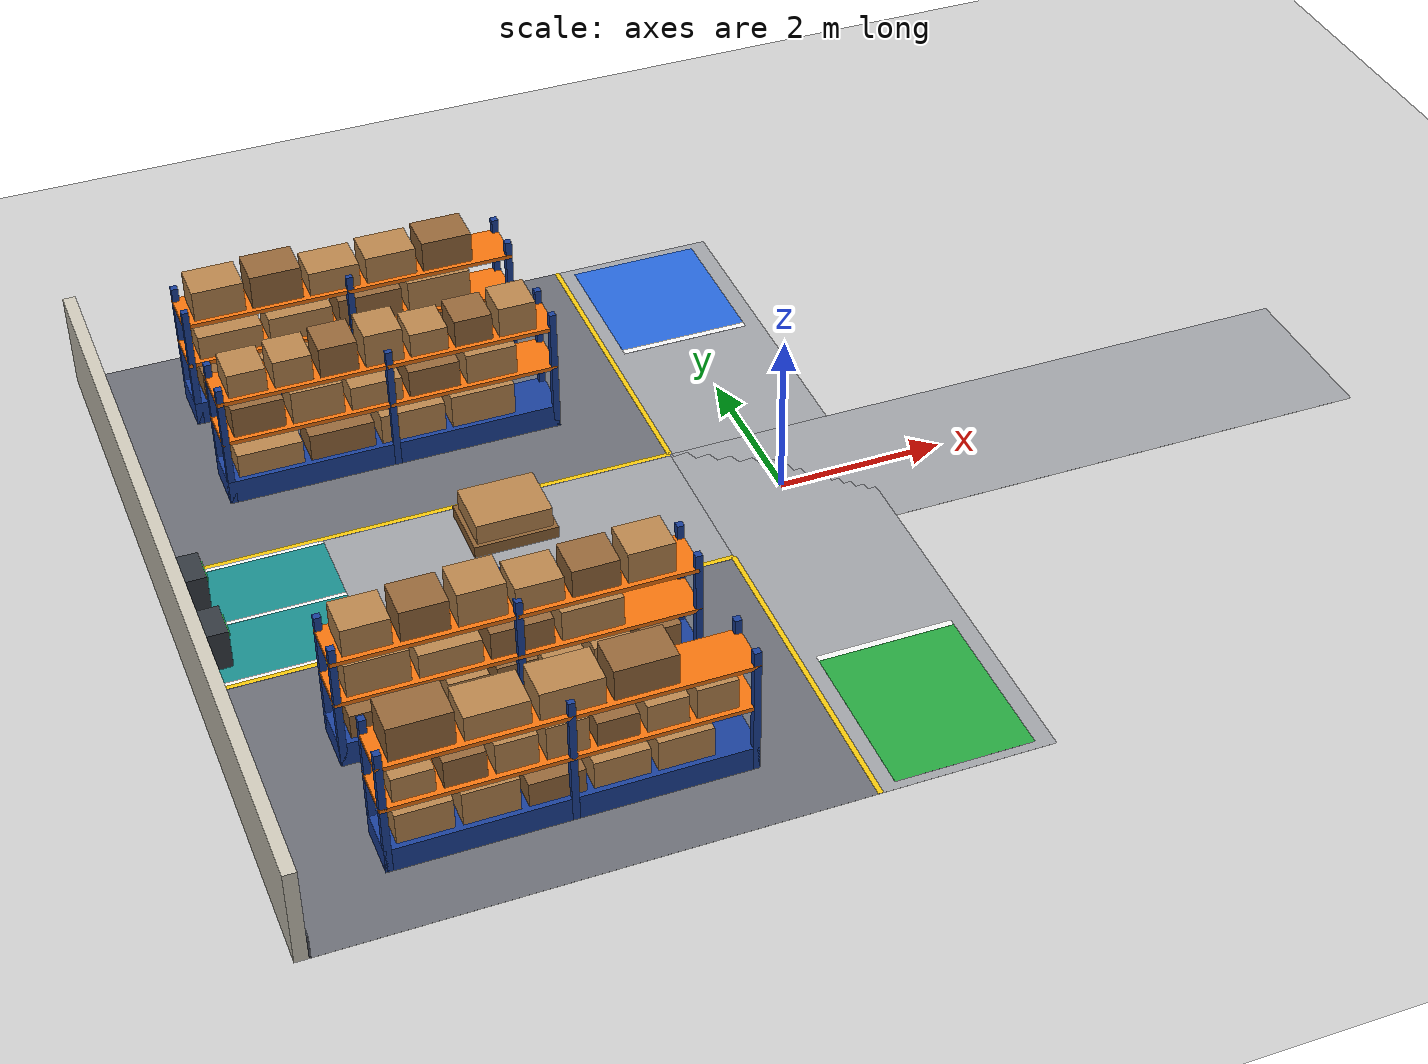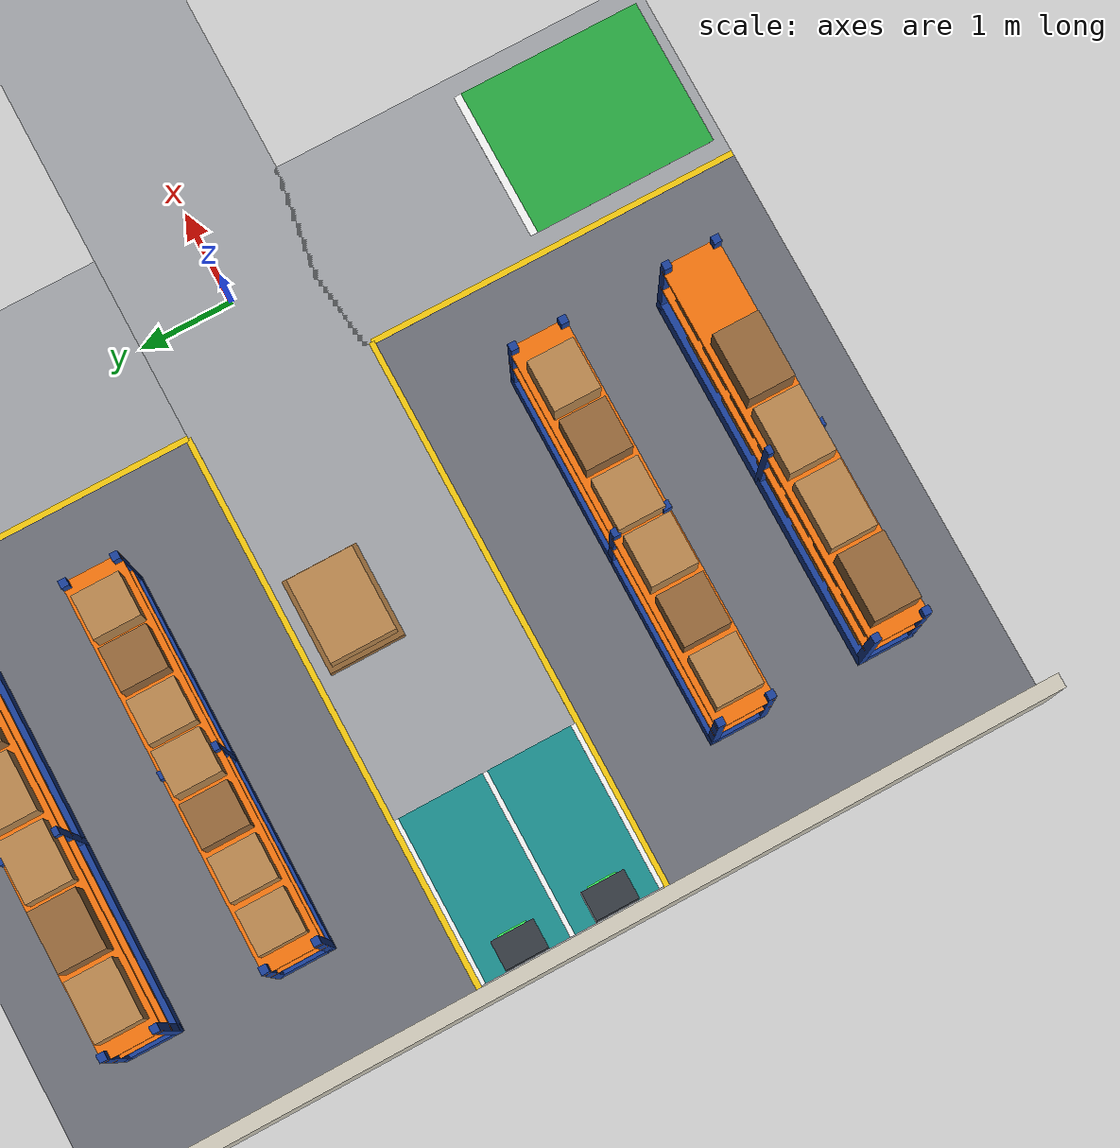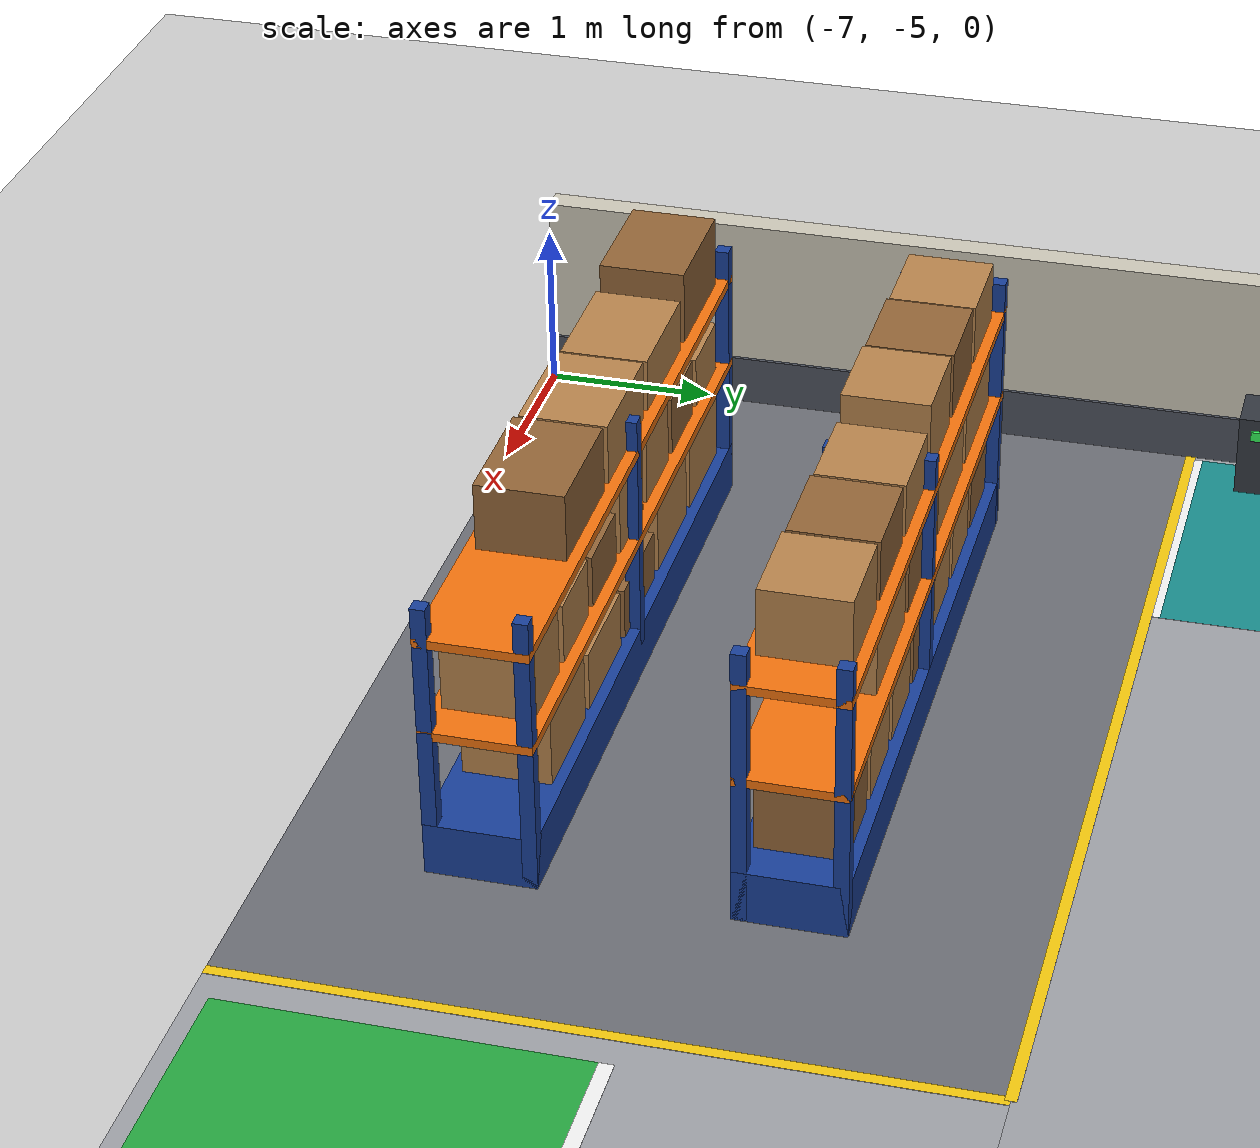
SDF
<sdf version="1.6">
 <world name="default">
  <include><uri>model://ground_plane</uri></include>
  <include><uri>model://sun</uri></include>
  <model name="amr_warehouse">
   <static>true</static>
   <link name="floor_main_ns">
    <pose>0.000 0.000 0.001 0 0 0</pose>
    <visual name="v">
     <geometry><box><size>2.000 10.000 0.002</size></box></geometry>
     <material>
      <ambient>0.62 0.63 0.65 1</ambient>
      <diffuse>0.62 0.63 0.65 1</diffuse>
      <specular>0.1 0.1 0.1 1</specular>
     </material>
    </visual>
   </link>
   <link name="floor_cross_ew">
    <pose>0.000 0.000 0.001 0 0 0</pose>
    <visual name="v">
     <geometry><box><size>14.000 2.000 0.002</size></box></geometry>
     <material>
      <ambient>0.62 0.63 0.65 1</ambient>
      <diffuse>0.62 0.63 0.65 1</diffuse>
      <specular>0.1 0.1 0.1 1</specular>
     </material>
    </visual>
   </link>
   <link name="floor_storage_-1_-1">
    <pose>-4.000 -3.000 0.001 0 0 0</pose>
    <visual name="v">
     <geometry><box><size>6.000 4.000 0.002</size></box></geometry>
     <material>
      <ambient>0.42 0.43 0.46 1</ambient>
      <diffuse>0.42 0.43 0.46 1</diffuse>
      <specular>0.1 0.1 0.1 1</specular>
     </material>
    </visual>
   </link>
   <link name="floor_storage_-1_1">
    <pose>-4.000 3.000 0.001 0 0 0</pose>
    <visual name="v">
     <geometry><box><size>6.000 4.000 0.002</size></box></geometry>
     <material>
      <ambient>0.42 0.43 0.46 1</ambient>
      <diffuse>0.42 0.43 0.46 1</diffuse>
      <specular>0.1 0.1 0.1 1</specular>
     </material>
    </visual>
   </link>
   <link name="zone_start">
    <pose>0.000 -3.900 0.002 0 0 0</pose>
    <visual name="v">
     <geometry><box><size>1.600 2.000 0.002</size></box></geometry>
     <material>
      <ambient>0.15 0.65 0.25 1</ambient>
      <diffuse>0.15 0.65 0.25 1</diffuse>
      <specular>0.1 0.1 0.1 1</specular>
     </material>
    </visual>
   </link>
   <link name="zone_delivery">
    <pose>0.000 4.000 0.002 0 0 0</pose>
    <visual name="v">
     <geometry><box><size>1.600 1.800 0.002</size></box></geometry>
     <material>
      <ambient>0.15 0.4 0.85 1</ambient>
      <diffuse>0.15 0.4 0.85 1</diffuse>
      <specular>0.1 0.1 0.1 1</specular>
     </material>
    </visual>
   </link>
   <link name="zone_charge">
    <pose>-6.075 0.000 0.002 0 0 0</pose>
    <visual name="v">
     <geometry><box><size>1.750 1.900 0.002</size></box></geometry>
     <material>
      <ambient>0.1 0.55 0.55 1</ambient>
      <diffuse>0.1 0.55 0.55 1</diffuse>
      <specular>0.1 0.1 0.1 1</specular>
     </material>
    </visual>
   </link>
   <link name="mark_ns_s_-1">
    <pose>-1.000 -3.000 0.003 0 0 0</pose>
    <visual name="v">
     <geometry><box><size>0.060 4.000 0.002</size></box></geometry>
     <material>
      <ambient>0.95 0.78 0.05 1</ambient>
      <diffuse>0.95 0.78 0.05 1</diffuse>
      <specular>0.1 0.1 0.1 1</specular>
     </material>
    </visual>
   </link>
   <link name="mark_ns_n_-1">
    <pose>-1.000 3.000 0.003 0 0 0</pose>
    <visual name="v">
     <geometry><box><size>0.060 4.000 0.002</size></box></geometry>
     <material>
      <ambient>0.95 0.78 0.05 1</ambient>
      <diffuse>0.95 0.78 0.05 1</diffuse>
      <specular>0.1 0.1 0.1 1</specular>
     </material>
    </visual>
   </link>
   <link name="mark_ew_w_-1">
    <pose>-4.000 -1.000 0.003 0 0 0</pose>
    <visual name="v">
     <geometry><box><size>6.000 0.060 0.002</size></box></geometry>
     <material>
      <ambient>0.95 0.78 0.05 1</ambient>
      <diffuse>0.95 0.78 0.05 1</diffuse>
      <specular>0.1 0.1 0.1 1</specular>
     </material>
    </visual>
   </link>
   <link name="mark_ew_w_1">
    <pose>-4.000 1.000 0.003 0 0 0</pose>
    <visual name="v">
     <geometry><box><size>6.000 0.060 0.002</size></box></geometry>
     <material>
      <ambient>0.95 0.78 0.05 1</ambient>
      <diffuse>0.95 0.78 0.05 1</diffuse>
      <specular>0.1 0.1 0.1 1</specular>
     </material>
    </visual>
   </link>
   <link name="mark_bay_0">
    <pose>-6.075 -0.950 0.003 0 0 0</pose>
    <visual name="v">
     <geometry><box><size>1.750 0.050 0.002</size></box></geometry>
     <material>
      <ambient>0.95 0.95 0.95 1</ambient>
      <diffuse>0.95 0.95 0.95 1</diffuse>
      <specular>0.1 0.1 0.1 1</specular>
     </material>
    </visual>
   </link>
   <link name="mark_bay_1">
    <pose>-6.075 0.000 0.003 0 0 0</pose>
    <visual name="v">
     <geometry><box><size>1.750 0.050 0.002</size></box></geometry>
     <material>
      <ambient>0.95 0.95 0.95 1</ambient>
      <diffuse>0.95 0.95 0.95 1</diffuse>
      <specular>0.1 0.1 0.1 1</specular>
     </material>
    </visual>
   </link>
   <link name="mark_bay_2">
    <pose>-6.075 0.950 0.003 0 0 0</pose>
    <visual name="v">
     <geometry><box><size>1.750 0.050 0.002</size></box></geometry>
     <material>
      <ambient>0.95 0.95 0.95 1</ambient>
      <diffuse>0.95 0.95 0.95 1</diffuse>
      <specular>0.1 0.1 0.1 1</specular>
     </material>
    </visual>
   </link>
   <link name="mark_stop_s">
    <pose>0.000 -2.900 0.003 0 0 0</pose>
    <visual name="v">
     <geometry><box><size>1.600 0.080 0.002</size></box></geometry>
     <material>
      <ambient>0.95 0.95 0.95 1</ambient>
      <diffuse>0.95 0.95 0.95 1</diffuse>
      <specular>0.1 0.1 0.1 1</specular>
     </material>
    </visual>
   </link>
   <link name="mark_stop_n">
    <pose>0.000 3.100 0.003 0 0 0</pose>
    <visual name="v">
     <geometry><box><size>1.600 0.080 0.002</size></box></geometry>
     <material>
      <ambient>0.95 0.95 0.95 1</ambient>
      <diffuse>0.95 0.95 0.95 1</diffuse>
      <specular>0.1 0.1 0.1 1</specular>
     </material>
    </visual>
   </link>
   <link name="wall_w">
    <pose>-7.075 0.000 0.600 0 0 0</pose>
    <collision name="c"><geometry><box><size>0.150 10.000 1.200</size></box></geometry></collision>
    <visual name="v">
     <geometry><box><size>0.150 10.000 1.200</size></box></geometry>
     <material>
      <ambient>0.8 0.78 0.72 1</ambient>
      <diffuse>0.8 0.78 0.72 1</diffuse>
      <specular>0.1 0.1 0.1 1</specular>
     </material>
    </visual>
   </link>
   <link name="wall_stripe3">
    <pose>-6.990 0.000 0.150 0 0 0</pose>
    <visual name="v">
     <geometry><box><size>0.020 10.000 0.300</size></box></geometry>
     <material>
      <ambient>0.3 0.32 0.36 1</ambient>
      <diffuse>0.3 0.32 0.36 1</diffuse>
      <specular>0.1 0.1 0.1 1</specular>
     </material>
    </visual>
   </link>
   <link name="rack_ES0_base">
    <pose>-4.000 -2.300 0.150 0 0 0</pose>
    <collision name="c"><geometry><box><size>4.000 0.600 0.300</size></box></geometry></collision>
    <visual name="v">
     <geometry><box><size>4.000 0.600 0.300</size></box></geometry>
     <material>
      <ambient>0.1 0.25 0.6 1</ambient>
      <diffuse>0.1 0.25 0.6 1</diffuse>
      <specular>0.1 0.1 0.1 1</specular>
     </material>
    </visual>
   </link>
   <link name="rack_ES0_post00">
    <pose>-5.960 -2.560 0.800 0 0 0</pose>
    <collision name="c"><geometry><box><size>0.080 0.080 1.600</size></box></geometry></collision>
    <visual name="v">
     <geometry><box><size>0.080 0.080 1.600</size></box></geometry>
     <material>
      <ambient>0.1 0.25 0.6 1</ambient>
      <diffuse>0.1 0.25 0.6 1</diffuse>
      <specular>0.1 0.1 0.1 1</specular>
     </material>
    </visual>
   </link>
   <link name="rack_ES0_post01">
    <pose>-5.960 -2.040 0.800 0 0 0</pose>
    <collision name="c"><geometry><box><size>0.080 0.080 1.600</size></box></geometry></collision>
    <visual name="v">
     <geometry><box><size>0.080 0.080 1.600</size></box></geometry>
     <material>
      <ambient>0.1 0.25 0.6 1</ambient>
      <diffuse>0.1 0.25 0.6 1</diffuse>
      <specular>0.1 0.1 0.1 1</specular>
     </material>
    </visual>
   </link>
   <link name="rack_ES0_post10">
    <pose>-4.000 -2.560 0.800 0 0 0</pose>
    <collision name="c"><geometry><box><size>0.080 0.080 1.600</size></box></geometry></collision>
    <visual name="v">
     <geometry><box><size>0.080 0.080 1.600</size></box></geometry>
     <material>
      <ambient>0.1 0.25 0.6 1</ambient>
      <diffuse>0.1 0.25 0.6 1</diffuse>
      <specular>0.1 0.1 0.1 1</specular>
     </material>
    </visual>
   </link>
   <link name="rack_ES0_post11">
    <pose>-4.000 -2.040 0.800 0 0 0</pose>
    <collision name="c"><geometry><box><size>0.080 0.080 1.600</size></box></geometry></collision>
    <visual name="v">
     <geometry><box><size>0.080 0.080 1.600</size></box></geometry>
     <material>
      <ambient>0.1 0.25 0.6 1</ambient>
      <diffuse>0.1 0.25 0.6 1</diffuse>
      <specular>0.1 0.1 0.1 1</specular>
     </material>
    </visual>
   </link>
   <link name="rack_ES0_post20">
    <pose>-2.040 -2.560 0.800 0 0 0</pose>
    <collision name="c"><geometry><box><size>0.080 0.080 1.600</size></box></geometry></collision>
    <visual name="v">
     <geometry><box><size>0.080 0.080 1.600</size></box></geometry>
     <material>
      <ambient>0.1 0.25 0.6 1</ambient>
      <diffuse>0.1 0.25 0.6 1</diffuse>
      <specular>0.1 0.1 0.1 1</specular>
     </material>
    </visual>
   </link>
   <link name="rack_ES0_post21">
    <pose>-2.040 -2.040 0.800 0 0 0</pose>
    <collision name="c"><geometry><box><size>0.080 0.080 1.600</size></box></geometry></collision>
    <visual name="v">
     <geometry><box><size>0.080 0.080 1.600</size></box></geometry>
     <material>
      <ambient>0.1 0.25 0.6 1</ambient>
      <diffuse>0.1 0.25 0.6 1</diffuse>
      <specular>0.1 0.1 0.1 1</specular>
     </material>
    </visual>
   </link>
   <link name="rack_ES0_beam0">
    <pose>-4.000 -2.300 0.850 0 0 0</pose>
    <collision name="c"><geometry><box><size>4.000 0.600 0.050</size></box></geometry></collision>
    <visual name="v">
     <geometry><box><size>4.000 0.600 0.050</size></box></geometry>
     <material>
      <ambient>0.95 0.45 0.05 1</ambient>
      <diffuse>0.95 0.45 0.05 1</diffuse>
      <specular>0.1 0.1 0.1 1</specular>
     </material>
    </visual>
   </link>
   <link name="rack_ES0_beam1">
    <pose>-4.000 -2.300 1.400 0 0 0</pose>
    <collision name="c"><geometry><box><size>4.000 0.600 0.050</size></box></geometry></collision>
    <visual name="v">
     <geometry><box><size>4.000 0.600 0.050</size></box></geometry>
     <material>
      <ambient>0.95 0.45 0.05 1</ambient>
      <diffuse>0.95 0.45 0.05 1</diffuse>
      <specular>0.1 0.1 0.1 1</specular>
     </material>
    </visual>
   </link>
   <link name="rack_ES0_carton0_0">
    <pose>-5.625 -2.300 0.450 0 0 0</pose>
    <visual name="v">
     <geometry><box><size>0.450 0.480 0.300</size></box></geometry>
     <material>
      <ambient>0.58 0.4 0.22 1</ambient>
      <diffuse>0.58 0.4 0.22 1</diffuse>
      <specular>0.1 0.1 0.1 1</specular>
     </material>
    </visual>
   </link>
   <link name="rack_ES0_carton0_1">
    <pose>-5.095 -2.300 0.470 0 0 0</pose>
    <visual name="v">
     <geometry><box><size>0.450 0.480 0.340</size></box></geometry>
     <material>
      <ambient>0.72 0.52 0.3 1</ambient>
      <diffuse>0.72 0.52 0.3 1</diffuse>
      <specular>0.1 0.1 0.1 1</specular>
     </material>
    </visual>
   </link>
   <link name="rack_ES0_carton0_2">
    <pose>-4.565 -2.300 0.490 0 0 0</pose>
    <visual name="v">
     <geometry><box><size>0.450 0.480 0.380</size></box></geometry>
     <material>
      <ambient>0.72 0.52 0.3 1</ambient>
      <diffuse>0.72 0.52 0.3 1</diffuse>
      <specular>0.1 0.1 0.1 1</specular>
     </material>
    </visual>
   </link>
   <link name="rack_ES0_carton0_3">
    <pose>-4.035 -2.300 0.510 0 0 0</pose>
    <visual name="v">
     <geometry><box><size>0.450 0.480 0.420</size></box></geometry>
     <material>
      <ambient>0.58 0.4 0.22 1</ambient>
      <diffuse>0.58 0.4 0.22 1</diffuse>
      <specular>0.1 0.1 0.1 1</specular>
     </material>
    </visual>
   </link>
   <link name="rack_ES0_carton0_4">
    <pose>-3.505 -2.300 0.450 0 0 0</pose>
    <visual name="v">
     <geometry><box><size>0.450 0.480 0.300</size></box></geometry>
     <material>
      <ambient>0.72 0.52 0.3 1</ambient>
      <diffuse>0.72 0.52 0.3 1</diffuse>
      <specular>0.1 0.1 0.1 1</specular>
     </material>
    </visual>
   </link>
   <link name="rack_ES0_carton0_5">
    <pose>-2.975 -2.300 0.470 0 0 0</pose>
    <visual name="v">
     <geometry><box><size>0.450 0.480 0.340</size></box></geometry>
     <material>
      <ambient>0.72 0.52 0.3 1</ambient>
      <diffuse>0.72 0.52 0.3 1</diffuse>
      <specular>0.1 0.1 0.1 1</specular>
     </material>
    </visual>
   </link>
   <link name="rack_ES0_carton0_6">
    <pose>-2.445 -2.300 0.490 0 0 0</pose>
    <visual name="v">
     <geometry><box><size>0.450 0.480 0.380</size></box></geometry>
     <material>
      <ambient>0.58 0.4 0.22 1</ambient>
      <diffuse>0.58 0.4 0.22 1</diffuse>
      <specular>0.1 0.1 0.1 1</specular>
     </material>
    </visual>
   </link>
   <link name="rack_ES0_carton1_0">
    <pose>-5.505 -2.300 1.085 0 0 0</pose>
    <visual name="v">
     <geometry><box><size>0.690 0.480 0.420</size></box></geometry>
     <material>
      <ambient>0.72 0.52 0.3 1</ambient>
      <diffuse>0.72 0.52 0.3 1</diffuse>
      <specular>0.1 0.1 0.1 1</specular>
     </material>
    </visual>
   </link>
   <link name="rack_ES0_carton1_1">
    <pose>-4.735 -2.300 1.025 0 0 0</pose>
    <visual name="v">
     <geometry><box><size>0.690 0.480 0.300</size></box></geometry>
     <material>
      <ambient>0.72 0.52 0.3 1</ambient>
      <diffuse>0.72 0.52 0.3 1</diffuse>
      <specular>0.1 0.1 0.1 1</specular>
     </material>
    </visual>
   </link>
   <link name="rack_ES0_carton1_2">
    <pose>-3.965 -2.300 1.045 0 0 0</pose>
    <visual name="v">
     <geometry><box><size>0.690 0.480 0.340</size></box></geometry>
     <material>
      <ambient>0.58 0.4 0.22 1</ambient>
      <diffuse>0.58 0.4 0.22 1</diffuse>
      <specular>0.1 0.1 0.1 1</specular>
     </material>
    </visual>
   </link>
   <link name="rack_ES0_carton1_3">
    <pose>-3.195 -2.300 1.065 0 0 0</pose>
    <visual name="v">
     <geometry><box><size>0.690 0.480 0.380</size></box></geometry>
     <material>
      <ambient>0.72 0.52 0.3 1</ambient>
      <diffuse>0.72 0.52 0.3 1</diffuse>
      <specular>0.1 0.1 0.1 1</specular>
     </material>
    </visual>
   </link>
   <link name="rack_ES0_carton2_0">
    <pose>-5.585 -2.300 1.595 0 0 0</pose>
    <visual name="v">
     <geometry><box><size>0.530 0.480 0.340</size></box></geometry>
     <material>
      <ambient>0.72 0.52 0.3 1</ambient>
      <diffuse>0.72 0.52 0.3 1</diffuse>
      <specular>0.1 0.1 0.1 1</specular>
     </material>
    </visual>
   </link>
   <link name="rack_ES0_carton2_1">
    <pose>-4.975 -2.300 1.615 0 0 0</pose>
    <visual name="v">
     <geometry><box><size>0.530 0.480 0.380</size></box></geometry>
     <material>
      <ambient>0.58 0.4 0.22 1</ambient>
      <diffuse>0.58 0.4 0.22 1</diffuse>
      <specular>0.1 0.1 0.1 1</specular>
     </material>
    </visual>
   </link>
   <link name="rack_ES0_carton2_2">
    <pose>-4.365 -2.300 1.635 0 0 0</pose>
    <visual name="v">
     <geometry><box><size>0.530 0.480 0.420</size></box></geometry>
     <material>
      <ambient>0.72 0.52 0.3 1</ambient>
      <diffuse>0.72 0.52 0.3 1</diffuse>
      <specular>0.1 0.1 0.1 1</specular>
     </material>
    </visual>
   </link>
   <link name="rack_ES0_carton2_3">
    <pose>-3.755 -2.300 1.575 0 0 0</pose>
    <visual name="v">
     <geometry><box><size>0.530 0.480 0.300</size></box></geometry>
     <material>
      <ambient>0.72 0.52 0.3 1</ambient>
      <diffuse>0.72 0.52 0.3 1</diffuse>
      <specular>0.1 0.1 0.1 1</specular>
     </material>
    </visual>
   </link>
   <link name="rack_ES0_carton2_4">
    <pose>-3.145 -2.300 1.595 0 0 0</pose>
    <visual name="v">
     <geometry><box><size>0.530 0.480 0.340</size></box></geometry>
     <material>
      <ambient>0.58 0.4 0.22 1</ambient>
      <diffuse>0.58 0.4 0.22 1</diffuse>
      <specular>0.1 0.1 0.1 1</specular>
     </material>
    </visual>
   </link>
   <link name="rack_ES0_carton2_5">
    <pose>-2.535 -2.300 1.615 0 0 0</pose>
    <visual name="v">
     <geometry><box><size>0.530 0.480 0.380</size></box></geometry>
     <material>
      <ambient>0.72 0.52 0.3 1</ambient>
      <diffuse>0.72 0.52 0.3 1</diffuse>
      <specular>0.1 0.1 0.1 1</specular>
     </material>
    </visual>
   </link>
   <link name="rack_ES1_base">
    <pose>-4.000 -3.900 0.150 0 0 0</pose>
    <collision name="c"><geometry><box><size>4.000 0.600 0.300</size></box></geometry></collision>
    <visual name="v">
     <geometry><box><size>4.000 0.600 0.300</size></box></geometry>
     <material>
      <ambient>0.1 0.25 0.6 1</ambient>
      <diffuse>0.1 0.25 0.6 1</diffuse>
      <specular>0.1 0.1 0.1 1</specular>
     </material>
    </visual>
   </link>
   <link name="rack_ES1_post00">
    <pose>-5.960 -4.160 0.800 0 0 0</pose>
    <collision name="c"><geometry><box><size>0.080 0.080 1.600</size></box></geometry></collision>
    <visual name="v">
     <geometry><box><size>0.080 0.080 1.600</size></box></geometry>
     <material>
      <ambient>0.1 0.25 0.6 1</ambient>
      <diffuse>0.1 0.25 0.6 1</diffuse>
      <specular>0.1 0.1 0.1 1</specular>
     </material>
    </visual>
   </link>
   <link name="rack_ES1_post01">
    <pose>-5.960 -3.640 0.800 0 0 0</pose>
    <collision name="c"><geometry><box><size>0.080 0.080 1.600</size></box></geometry></collision>
    <visual name="v">
     <geometry><box><size>0.080 0.080 1.600</size></box></geometry>
     <material>
      <ambient>0.1 0.25 0.6 1</ambient>
      <diffuse>0.1 0.25 0.6 1</diffuse>
      <specular>0.1 0.1 0.1 1</specular>
     </material>
    </visual>
   </link>
   <link name="rack_ES1_post10">
    <pose>-4.000 -4.160 0.800 0 0 0</pose>
    <collision name="c"><geometry><box><size>0.080 0.080 1.600</size></box></geometry></collision>
    <visual name="v">
     <geometry><box><size>0.080 0.080 1.600</size></box></geometry>
     <material>
      <ambient>0.1 0.25 0.6 1</ambient>
      <diffuse>0.1 0.25 0.6 1</diffuse>
      <specular>0.1 0.1 0.1 1</specular>
     </material>
    </visual>
   </link>
   <link name="rack_ES1_post11">
    <pose>-4.000 -3.640 0.800 0 0 0</pose>
    <collision name="c"><geometry><box><size>0.080 0.080 1.600</size></box></geometry></collision>
    <visual name="v">
     <geometry><box><size>0.080 0.080 1.600</size></box></geometry>
     <material>
      <ambient>0.1 0.25 0.6 1</ambient>
      <diffuse>0.1 0.25 0.6 1</diffuse>
      <specular>0.1 0.1 0.1 1</specular>
     </material>
    </visual>
   </link>
   <link name="rack_ES1_post20">
    <pose>-2.040 -4.160 0.800 0 0 0</pose>
    <collision name="c"><geometry><box><size>0.080 0.080 1.600</size></box></geometry></collision>
    <visual name="v">
     <geometry><box><size>0.080 0.080 1.600</size></box></geometry>
     <material>
      <ambient>0.1 0.25 0.6 1</ambient>
      <diffuse>0.1 0.25 0.6 1</diffuse>
      <specular>0.1 0.1 0.1 1</specular>
     </material>
    </visual>
   </link>
   <link name="rack_ES1_post21">
    <pose>-2.040 -3.640 0.800 0 0 0</pose>
    <collision name="c"><geometry><box><size>0.080 0.080 1.600</size></box></geometry></collision>
    <visual name="v">
     <geometry><box><size>0.080 0.080 1.600</size></box></geometry>
     <material>
      <ambient>0.1 0.25 0.6 1</ambient>
      <diffuse>0.1 0.25 0.6 1</diffuse>
      <specular>0.1 0.1 0.1 1</specular>
     </material>
    </visual>
   </link>
   <link name="rack_ES1_beam0">
    <pose>-4.000 -3.900 0.850 0 0 0</pose>
    <collision name="c"><geometry><box><size>4.000 0.600 0.050</size></box></geometry></collision>
    <visual name="v">
     <geometry><box><size>4.000 0.600 0.050</size></box></geometry>
     <material>
      <ambient>0.95 0.45 0.05 1</ambient>
      <diffuse>0.95 0.45 0.05 1</diffuse>
      <specular>0.1 0.1 0.1 1</specular>
     </material>
    </visual>
   </link>
   <link name="rack_ES1_beam1">
    <pose>-4.000 -3.900 1.400 0 0 0</pose>
    <collision name="c"><geometry><box><size>4.000 0.600 0.050</size></box></geometry></collision>
    <visual name="v">
     <geometry><box><size>4.000 0.600 0.050</size></box></geometry>
     <material>
      <ambient>0.95 0.45 0.05 1</ambient>
      <diffuse>0.95 0.45 0.05 1</diffuse>
      <specular>0.1 0.1 0.1 1</specular>
     </material>
    </visual>
   </link>
   <link name="rack_ES1_carton0_0">
    <pose>-5.545 -3.900 0.490 0 0 0</pose>
    <visual name="v">
     <geometry><box><size>0.610 0.480 0.380</size></box></geometry>
     <material>
      <ambient>0.72 0.52 0.3 1</ambient>
      <diffuse>0.72 0.52 0.3 1</diffuse>
      <specular>0.1 0.1 0.1 1</specular>
     </material>
    </visual>
   </link>
   <link name="rack_ES1_carton0_1">
    <pose>-4.855 -3.900 0.510 0 0 0</pose>
    <visual name="v">
     <geometry><box><size>0.610 0.480 0.420</size></box></geometry>
     <material>
      <ambient>0.72 0.52 0.3 1</ambient>
      <diffuse>0.72 0.52 0.3 1</diffuse>
      <specular>0.1 0.1 0.1 1</specular>
     </material>
    </visual>
   </link>
   <link name="rack_ES1_carton0_2">
    <pose>-4.165 -3.900 0.450 0 0 0</pose>
    <visual name="v">
     <geometry><box><size>0.610 0.480 0.300</size></box></geometry>
     <material>
      <ambient>0.58 0.4 0.22 1</ambient>
      <diffuse>0.58 0.4 0.22 1</diffuse>
      <specular>0.1 0.1 0.1 1</specular>
     </material>
    </visual>
   </link>
   <link name="rack_ES1_carton0_3">
    <pose>-3.475 -3.900 0.470 0 0 0</pose>
    <visual name="v">
     <geometry><box><size>0.610 0.480 0.340</size></box></geometry>
     <material>
      <ambient>0.72 0.52 0.3 1</ambient>
      <diffuse>0.72 0.52 0.3 1</diffuse>
      <specular>0.1 0.1 0.1 1</specular>
     </material>
    </visual>
   </link>
   <link name="rack_ES1_carton0_4">
    <pose>-2.785 -3.900 0.490 0 0 0</pose>
    <visual name="v">
     <geometry><box><size>0.610 0.480 0.380</size></box></geometry>
     <material>
      <ambient>0.72 0.52 0.3 1</ambient>
      <diffuse>0.72 0.52 0.3 1</diffuse>
      <specular>0.1 0.1 0.1 1</specular>
     </material>
    </visual>
   </link>
   <link name="rack_ES1_carton1_0">
    <pose>-5.625 -3.900 1.025 0 0 0</pose>
    <visual name="v">
     <geometry><box><size>0.450 0.480 0.300</size></box></geometry>
     <material>
      <ambient>0.72 0.52 0.3 1</ambient>
      <diffuse>0.72 0.52 0.3 1</diffuse>
      <specular>0.1 0.1 0.1 1</specular>
     </material>
    </visual>
   </link>
   <link name="rack_ES1_carton1_1">
    <pose>-5.095 -3.900 1.045 0 0 0</pose>
    <visual name="v">
     <geometry><box><size>0.450 0.480 0.340</size></box></geometry>
     <material>
      <ambient>0.58 0.4 0.22 1</ambient>
      <diffuse>0.58 0.4 0.22 1</diffuse>
      <specular>0.1 0.1 0.1 1</specular>
     </material>
    </visual>
   </link>
   <link name="rack_ES1_carton1_2">
    <pose>-4.565 -3.900 1.065 0 0 0</pose>
    <visual name="v">
     <geometry><box><size>0.450 0.480 0.380</size></box></geometry>
     <material>
      <ambient>0.72 0.52 0.3 1</ambient>
      <diffuse>0.72 0.52 0.3 1</diffuse>
      <specular>0.1 0.1 0.1 1</specular>
     </material>
    </visual>
   </link>
   <link name="rack_ES1_carton1_3">
    <pose>-4.035 -3.900 1.085 0 0 0</pose>
    <visual name="v">
     <geometry><box><size>0.450 0.480 0.420</size></box></geometry>
     <material>
      <ambient>0.72 0.52 0.3 1</ambient>
      <diffuse>0.72 0.52 0.3 1</diffuse>
      <specular>0.1 0.1 0.1 1</specular>
     </material>
    </visual>
   </link>
   <link name="rack_ES1_carton1_4">
    <pose>-3.505 -3.900 1.025 0 0 0</pose>
    <visual name="v">
     <geometry><box><size>0.450 0.480 0.300</size></box></geometry>
     <material>
      <ambient>0.58 0.4 0.22 1</ambient>
      <diffuse>0.58 0.4 0.22 1</diffuse>
      <specular>0.1 0.1 0.1 1</specular>
     </material>
    </visual>
   </link>
   <link name="rack_ES1_carton1_5">
    <pose>-2.975 -3.900 1.045 0 0 0</pose>
    <visual name="v">
     <geometry><box><size>0.450 0.480 0.340</size></box></geometry>
     <material>
      <ambient>0.72 0.52 0.3 1</ambient>
      <diffuse>0.72 0.52 0.3 1</diffuse>
      <specular>0.1 0.1 0.1 1</specular>
     </material>
    </visual>
   </link>
   <link name="rack_ES1_carton1_6">
    <pose>-2.445 -3.900 1.065 0 0 0</pose>
    <visual name="v">
     <geometry><box><size>0.450 0.480 0.380</size></box></geometry>
     <material>
      <ambient>0.72 0.52 0.3 1</ambient>
      <diffuse>0.72 0.52 0.3 1</diffuse>
      <specular>0.1 0.1 0.1 1</specular>
     </material>
    </visual>
   </link>
   <link name="rack_ES1_carton2_0">
    <pose>-5.505 -3.900 1.635 0 0 0</pose>
    <visual name="v">
     <geometry><box><size>0.690 0.480 0.420</size></box></geometry>
     <material>
      <ambient>0.58 0.4 0.22 1</ambient>
      <diffuse>0.58 0.4 0.22 1</diffuse>
      <specular>0.1 0.1 0.1 1</specular>
     </material>
    </visual>
   </link>
   <link name="rack_ES1_carton2_1">
    <pose>-4.735 -3.900 1.575 0 0 0</pose>
    <visual name="v">
     <geometry><box><size>0.690 0.480 0.300</size></box></geometry>
     <material>
      <ambient>0.72 0.52 0.3 1</ambient>
      <diffuse>0.72 0.52 0.3 1</diffuse>
      <specular>0.1 0.1 0.1 1</specular>
     </material>
    </visual>
   </link>
   <link name="rack_ES1_carton2_2">
    <pose>-3.965 -3.900 1.595 0 0 0</pose>
    <visual name="v">
     <geometry><box><size>0.690 0.480 0.340</size></box></geometry>
     <material>
      <ambient>0.72 0.52 0.3 1</ambient>
      <diffuse>0.72 0.52 0.3 1</diffuse>
      <specular>0.1 0.1 0.1 1</specular>
     </material>
    </visual>
   </link>
   <link name="rack_ES1_carton2_3">
    <pose>-3.195 -3.900 1.615 0 0 0</pose>
    <visual name="v">
     <geometry><box><size>0.690 0.480 0.380</size></box></geometry>
     <material>
      <ambient>0.58 0.4 0.22 1</ambient>
      <diffuse>0.58 0.4 0.22 1</diffuse>
      <specular>0.1 0.1 0.1 1</specular>
     </material>
    </visual>
   </link>
   <link name="rack_EN0_base">
    <pose>-4.000 2.300 0.150 0 0 0</pose>
    <collision name="c"><geometry><box><size>4.000 0.600 0.300</size></box></geometry></collision>
    <visual name="v">
     <geometry><box><size>4.000 0.600 0.300</size></box></geometry>
     <material>
      <ambient>0.1 0.25 0.6 1</ambient>
      <diffuse>0.1 0.25 0.6 1</diffuse>
      <specular>0.1 0.1 0.1 1</specular>
     </material>
    </visual>
   </link>
   <link name="rack_EN0_post00">
    <pose>-5.960 2.040 0.800 0 0 0</pose>
    <collision name="c"><geometry><box><size>0.080 0.080 1.600</size></box></geometry></collision>
    <visual name="v">
     <geometry><box><size>0.080 0.080 1.600</size></box></geometry>
     <material>
      <ambient>0.1 0.25 0.6 1</ambient>
      <diffuse>0.1 0.25 0.6 1</diffuse>
      <specular>0.1 0.1 0.1 1</specular>
     </material>
    </visual>
   </link>
   <link name="rack_EN0_post01">
    <pose>-5.960 2.560 0.800 0 0 0</pose>
    <collision name="c"><geometry><box><size>0.080 0.080 1.600</size></box></geometry></collision>
    <visual name="v">
     <geometry><box><size>0.080 0.080 1.600</size></box></geometry>
     <material>
      <ambient>0.1 0.25 0.6 1</ambient>
      <diffuse>0.1 0.25 0.6 1</diffuse>
      <specular>0.1 0.1 0.1 1</specular>
     </material>
    </visual>
   </link>
   <link name="rack_EN0_post10">
    <pose>-4.000 2.040 0.800 0 0 0</pose>
    <collision name="c"><geometry><box><size>0.080 0.080 1.600</size></box></geometry></collision>
    <visual name="v">
     <geometry><box><size>0.080 0.080 1.600</size></box></geometry>
     <material>
      <ambient>0.1 0.25 0.6 1</ambient>
      <diffuse>0.1 0.25 0.6 1</diffuse>
      <specular>0.1 0.1 0.1 1</specular>
     </material>
    </visual>
   </link>
   <link name="rack_EN0_post11">
    <pose>-4.000 2.560 0.800 0 0 0</pose>
    <collision name="c"><geometry><box><size>0.080 0.080 1.600</size></box></geometry></collision>
    <visual name="v">
     <geometry><box><size>0.080 0.080 1.600</size></box></geometry>
     <material>
      <ambient>0.1 0.25 0.6 1</ambient>
      <diffuse>0.1 0.25 0.6 1</diffuse>
      <specular>0.1 0.1 0.1 1</specular>
     </material>
    </visual>
   </link>
   <link name="rack_EN0_post20">
    <pose>-2.040 2.040 0.800 0 0 0</pose>
    <collision name="c"><geometry><box><size>0.080 0.080 1.600</size></box></geometry></collision>
    <visual name="v">
     <geometry><box><size>0.080 0.080 1.600</size></box></geometry>
     <material>
      <ambient>0.1 0.25 0.6 1</ambient>
      <diffuse>0.1 0.25 0.6 1</diffuse>
      <specular>0.1 0.1 0.1 1</specular>
     </material>
    </visual>
   </link>
   <link name="rack_EN0_post21">
    <pose>-2.040 2.560 0.800 0 0 0</pose>
    <collision name="c"><geometry><box><size>0.080 0.080 1.600</size></box></geometry></collision>
    <visual name="v">
     <geometry><box><size>0.080 0.080 1.600</size></box></geometry>
     <material>
      <ambient>0.1 0.25 0.6 1</ambient>
      <diffuse>0.1 0.25 0.6 1</diffuse>
      <specular>0.1 0.1 0.1 1</specular>
     </material>
    </visual>
   </link>
   <link name="rack_EN0_beam0">
    <pose>-4.000 2.300 0.850 0 0 0</pose>
    <collision name="c"><geometry><box><size>4.000 0.600 0.050</size></box></geometry></collision>
    <visual name="v">
     <geometry><box><size>4.000 0.600 0.050</size></box></geometry>
     <material>
      <ambient>0.95 0.45 0.05 1</ambient>
      <diffuse>0.95 0.45 0.05 1</diffuse>
      <specular>0.1 0.1 0.1 1</specular>
     </material>
    </visual>
   </link>
   <link name="rack_EN0_beam1">
    <pose>-4.000 2.300 1.400 0 0 0</pose>
    <collision name="c"><geometry><box><size>4.000 0.600 0.050</size></box></geometry></collision>
    <visual name="v">
     <geometry><box><size>4.000 0.600 0.050</size></box></geometry>
     <material>
      <ambient>0.95 0.45 0.05 1</ambient>
      <diffuse>0.95 0.45 0.05 1</diffuse>
      <specular>0.1 0.1 0.1 1</specular>
     </material>
    </visual>
   </link>
   <link name="rack_EN0_carton0_0">
    <pose>-5.465 2.300 0.450 0 0 0</pose>
    <visual name="v">
     <geometry><box><size>0.770 0.480 0.300</size></box></geometry>
     <material>
      <ambient>0.72 0.52 0.3 1</ambient>
      <diffuse>0.72 0.52 0.3 1</diffuse>
      <specular>0.1 0.1 0.1 1</specular>
     </material>
    </visual>
   </link>
   <link name="rack_EN0_carton0_1">
    <pose>-4.615 2.300 0.470 0 0 0</pose>
    <visual name="v">
     <geometry><box><size>0.770 0.480 0.340</size></box></geometry>
     <material>
      <ambient>0.58 0.4 0.22 1</ambient>
      <diffuse>0.58 0.4 0.22 1</diffuse>
      <specular>0.1 0.1 0.1 1</specular>
     </material>
    </visual>
   </link>
   <link name="rack_EN0_carton0_2">
    <pose>-3.765 2.300 0.490 0 0 0</pose>
    <visual name="v">
     <geometry><box><size>0.770 0.480 0.380</size></box></geometry>
     <material>
      <ambient>0.72 0.52 0.3 1</ambient>
      <diffuse>0.72 0.52 0.3 1</diffuse>
      <specular>0.1 0.1 0.1 1</specular>
     </material>
    </visual>
   </link>
   <link name="rack_EN0_carton0_3">
    <pose>-2.915 2.300 0.510 0 0 0</pose>
    <visual name="v">
     <geometry><box><size>0.770 0.480 0.420</size></box></geometry>
     <material>
      <ambient>0.72 0.52 0.3 1</ambient>
      <diffuse>0.72 0.52 0.3 1</diffuse>
      <specular>0.1 0.1 0.1 1</specular>
     </material>
    </visual>
   </link>
   <link name="rack_EN0_carton1_0">
    <pose>-5.545 2.300 1.065 0 0 0</pose>
    <visual name="v">
     <geometry><box><size>0.610 0.480 0.380</size></box></geometry>
     <material>
      <ambient>0.58 0.4 0.22 1</ambient>
      <diffuse>0.58 0.4 0.22 1</diffuse>
      <specular>0.1 0.1 0.1 1</specular>
     </material>
    </visual>
   </link>
   <link name="rack_EN0_carton1_1">
    <pose>-4.855 2.300 1.085 0 0 0</pose>
    <visual name="v">
     <geometry><box><size>0.610 0.480 0.420</size></box></geometry>
     <material>
      <ambient>0.72 0.52 0.3 1</ambient>
      <diffuse>0.72 0.52 0.3 1</diffuse>
      <specular>0.1 0.1 0.1 1</specular>
     </material>
    </visual>
   </link>
   <link name="rack_EN0_carton1_2">
    <pose>-4.165 2.300 1.025 0 0 0</pose>
    <visual name="v">
     <geometry><box><size>0.610 0.480 0.300</size></box></geometry>
     <material>
      <ambient>0.72 0.52 0.3 1</ambient>
      <diffuse>0.72 0.52 0.3 1</diffuse>
      <specular>0.1 0.1 0.1 1</specular>
     </material>
    </visual>
   </link>
   <link name="rack_EN0_carton1_3">
    <pose>-3.475 2.300 1.045 0 0 0</pose>
    <visual name="v">
     <geometry><box><size>0.610 0.480 0.340</size></box></geometry>
     <material>
      <ambient>0.58 0.4 0.22 1</ambient>
      <diffuse>0.58 0.4 0.22 1</diffuse>
      <specular>0.1 0.1 0.1 1</specular>
     </material>
    </visual>
   </link>
   <link name="rack_EN0_carton1_4">
    <pose>-2.785 2.300 1.065 0 0 0</pose>
    <visual name="v">
     <geometry><box><size>0.610 0.480 0.380</size></box></geometry>
     <material>
      <ambient>0.72 0.52 0.3 1</ambient>
      <diffuse>0.72 0.52 0.3 1</diffuse>
      <specular>0.1 0.1 0.1 1</specular>
     </material>
    </visual>
   </link>
   <link name="rack_EN0_carton2_0">
    <pose>-5.625 2.300 1.575 0 0 0</pose>
    <visual name="v">
     <geometry><box><size>0.450 0.480 0.300</size></box></geometry>
     <material>
      <ambient>0.72 0.52 0.3 1</ambient>
      <diffuse>0.72 0.52 0.3 1</diffuse>
      <specular>0.1 0.1 0.1 1</specular>
     </material>
    </visual>
   </link>
   <link name="rack_EN0_carton2_1">
    <pose>-5.095 2.300 1.595 0 0 0</pose>
    <visual name="v">
     <geometry><box><size>0.450 0.480 0.340</size></box></geometry>
     <material>
      <ambient>0.72 0.52 0.3 1</ambient>
      <diffuse>0.72 0.52 0.3 1</diffuse>
      <specular>0.1 0.1 0.1 1</specular>
     </material>
    </visual>
   </link>
   <link name="rack_EN0_carton2_2">
    <pose>-4.565 2.300 1.615 0 0 0</pose>
    <visual name="v">
     <geometry><box><size>0.450 0.480 0.380</size></box></geometry>
     <material>
      <ambient>0.58 0.4 0.22 1</ambient>
      <diffuse>0.58 0.4 0.22 1</diffuse>
      <specular>0.1 0.1 0.1 1</specular>
     </material>
    </visual>
   </link>
   <link name="rack_EN0_carton2_3">
    <pose>-4.035 2.300 1.635 0 0 0</pose>
    <visual name="v">
     <geometry><box><size>0.450 0.480 0.420</size></box></geometry>
     <material>
      <ambient>0.72 0.52 0.3 1</ambient>
      <diffuse>0.72 0.52 0.3 1</diffuse>
      <specular>0.1 0.1 0.1 1</specular>
     </material>
    </visual>
   </link>
   <link name="rack_EN0_carton2_4">
    <pose>-3.505 2.300 1.575 0 0 0</pose>
    <visual name="v">
     <geometry><box><size>0.450 0.480 0.300</size></box></geometry>
     <material>
      <ambient>0.72 0.52 0.3 1</ambient>
      <diffuse>0.72 0.52 0.3 1</diffuse>
      <specular>0.1 0.1 0.1 1</specular>
     </material>
    </visual>
   </link>
   <link name="rack_EN0_carton2_5">
    <pose>-2.975 2.300 1.595 0 0 0</pose>
    <visual name="v">
     <geometry><box><size>0.450 0.480 0.340</size></box></geometry>
     <material>
      <ambient>0.58 0.4 0.22 1</ambient>
      <diffuse>0.58 0.4 0.22 1</diffuse>
      <specular>0.1 0.1 0.1 1</specular>
     </material>
    </visual>
   </link>
   <link name="rack_EN0_carton2_6">
    <pose>-2.445 2.300 1.615 0 0 0</pose>
    <visual name="v">
     <geometry><box><size>0.450 0.480 0.380</size></box></geometry>
     <material>
      <ambient>0.72 0.52 0.3 1</ambient>
      <diffuse>0.72 0.52 0.3 1</diffuse>
      <specular>0.1 0.1 0.1 1</specular>
     </material>
    </visual>
   </link>
   <link name="rack_EN1_base">
    <pose>-4.000 3.900 0.150 0 0 0</pose>
    <collision name="c"><geometry><box><size>4.000 0.600 0.300</size></box></geometry></collision>
    <visual name="v">
     <geometry><box><size>4.000 0.600 0.300</size></box></geometry>
     <material>
      <ambient>0.1 0.25 0.6 1</ambient>
      <diffuse>0.1 0.25 0.6 1</diffuse>
      <specular>0.1 0.1 0.1 1</specular>
     </material>
    </visual>
   </link>
   <link name="rack_EN1_post00">
    <pose>-5.960 3.640 0.800 0 0 0</pose>
    <collision name="c"><geometry><box><size>0.080 0.080 1.600</size></box></geometry></collision>
    <visual name="v">
     <geometry><box><size>0.080 0.080 1.600</size></box></geometry>
     <material>
      <ambient>0.1 0.25 0.6 1</ambient>
      <diffuse>0.1 0.25 0.6 1</diffuse>
      <specular>0.1 0.1 0.1 1</specular>
     </material>
    </visual>
   </link>
   <link name="rack_EN1_post01">
    <pose>-5.960 4.160 0.800 0 0 0</pose>
    <collision name="c"><geometry><box><size>0.080 0.080 1.600</size></box></geometry></collision>
    <visual name="v">
     <geometry><box><size>0.080 0.080 1.600</size></box></geometry>
     <material>
      <ambient>0.1 0.25 0.6 1</ambient>
      <diffuse>0.1 0.25 0.6 1</diffuse>
      <specular>0.1 0.1 0.1 1</specular>
     </material>
    </visual>
   </link>
   <link name="rack_EN1_post10">
    <pose>-4.000 3.640 0.800 0 0 0</pose>
    <collision name="c"><geometry><box><size>0.080 0.080 1.600</size></box></geometry></collision>
    <visual name="v">
     <geometry><box><size>0.080 0.080 1.600</size></box></geometry>
     <material>
      <ambient>0.1 0.25 0.6 1</ambient>
      <diffuse>0.1 0.25 0.6 1</diffuse>
      <specular>0.1 0.1 0.1 1</specular>
     </material>
    </visual>
   </link>
   <link name="rack_EN1_post11">
    <pose>-4.000 4.160 0.800 0 0 0</pose>
    <collision name="c"><geometry><box><size>0.080 0.080 1.600</size></box></geometry></collision>
    <visual name="v">
     <geometry><box><size>0.080 0.080 1.600</size></box></geometry>
     <material>
      <ambient>0.1 0.25 0.6 1</ambient>
      <diffuse>0.1 0.25 0.6 1</diffuse>
      <specular>0.1 0.1 0.1 1</specular>
     </material>
    </visual>
   </link>
   <link name="rack_EN1_post20">
    <pose>-2.040 3.640 0.800 0 0 0</pose>
    <collision name="c"><geometry><box><size>0.080 0.080 1.600</size></box></geometry></collision>
    <visual name="v">
     <geometry><box><size>0.080 0.080 1.600</size></box></geometry>
     <material>
      <ambient>0.1 0.25 0.6 1</ambient>
      <diffuse>0.1 0.25 0.6 1</diffuse>
      <specular>0.1 0.1 0.1 1</specular>
     </material>
    </visual>
   </link>
   <link name="rack_EN1_post21">
    <pose>-2.040 4.160 0.800 0 0 0</pose>
    <collision name="c"><geometry><box><size>0.080 0.080 1.600</size></box></geometry></collision>
    <visual name="v">
     <geometry><box><size>0.080 0.080 1.600</size></box></geometry>
     <material>
      <ambient>0.1 0.25 0.6 1</ambient>
      <diffuse>0.1 0.25 0.6 1</diffuse>
      <specular>0.1 0.1 0.1 1</specular>
     </material>
    </visual>
   </link>
   <link name="rack_EN1_beam0">
    <pose>-4.000 3.900 0.850 0 0 0</pose>
    <collision name="c"><geometry><box><size>4.000 0.600 0.050</size></box></geometry></collision>
    <visual name="v">
     <geometry><box><size>4.000 0.600 0.050</size></box></geometry>
     <material>
      <ambient>0.95 0.45 0.05 1</ambient>
      <diffuse>0.95 0.45 0.05 1</diffuse>
      <specular>0.1 0.1 0.1 1</specular>
     </material>
    </visual>
   </link>
   <link name="rack_EN1_beam1">
    <pose>-4.000 3.900 1.400 0 0 0</pose>
    <collision name="c"><geometry><box><size>4.000 0.600 0.050</size></box></geometry></collision>
    <visual name="v">
     <geometry><box><size>4.000 0.600 0.050</size></box></geometry>
     <material>
      <ambient>0.95 0.45 0.05 1</ambient>
      <diffuse>0.95 0.45 0.05 1</diffuse>
      <specular>0.1 0.1 0.1 1</specular>
     </material>
    </visual>
   </link>
   <link name="rack_EN1_carton0_0">
    <pose>-5.585 3.900 0.470 0 0 0</pose>
    <visual name="v">
     <geometry><box><size>0.530 0.480 0.340</size></box></geometry>
     <material>
      <ambient>0.58 0.4 0.22 1</ambient>
      <diffuse>0.58 0.4 0.22 1</diffuse>
      <specular>0.1 0.1 0.1 1</specular>
     </material>
    </visual>
   </link>
   <link name="rack_EN1_carton0_1">
    <pose>-4.975 3.900 0.490 0 0 0</pose>
    <visual name="v">
     <geometry><box><size>0.530 0.480 0.380</size></box></geometry>
     <material>
      <ambient>0.72 0.52 0.3 1</ambient>
      <diffuse>0.72 0.52 0.3 1</diffuse>
      <specular>0.1 0.1 0.1 1</specular>
     </material>
    </visual>
   </link>
   <link name="rack_EN1_carton0_2">
    <pose>-4.365 3.900 0.510 0 0 0</pose>
    <visual name="v">
     <geometry><box><size>0.530 0.480 0.420</size></box></geometry>
     <material>
      <ambient>0.72 0.52 0.3 1</ambient>
      <diffuse>0.72 0.52 0.3 1</diffuse>
      <specular>0.1 0.1 0.1 1</specular>
     </material>
    </visual>
   </link>
   <link name="rack_EN1_carton0_3">
    <pose>-3.755 3.900 0.450 0 0 0</pose>
    <visual name="v">
     <geometry><box><size>0.530 0.480 0.300</size></box></geometry>
     <material>
      <ambient>0.58 0.4 0.22 1</ambient>
      <diffuse>0.58 0.4 0.22 1</diffuse>
      <specular>0.1 0.1 0.1 1</specular>
     </material>
    </visual>
   </link>
   <link name="rack_EN1_carton0_4">
    <pose>-3.145 3.900 0.470 0 0 0</pose>
    <visual name="v">
     <geometry><box><size>0.530 0.480 0.340</size></box></geometry>
     <material>
      <ambient>0.72 0.52 0.3 1</ambient>
      <diffuse>0.72 0.52 0.3 1</diffuse>
      <specular>0.1 0.1 0.1 1</specular>
     </material>
    </visual>
   </link>
   <link name="rack_EN1_carton0_5">
    <pose>-2.535 3.900 0.490 0 0 0</pose>
    <visual name="v">
     <geometry><box><size>0.530 0.480 0.380</size></box></geometry>
     <material>
      <ambient>0.72 0.52 0.3 1</ambient>
      <diffuse>0.72 0.52 0.3 1</diffuse>
      <specular>0.1 0.1 0.1 1</specular>
     </material>
    </visual>
   </link>
   <link name="rack_EN1_carton1_0">
    <pose>-5.465 3.900 1.025 0 0 0</pose>
    <visual name="v">
     <geometry><box><size>0.770 0.480 0.300</size></box></geometry>
     <material>
      <ambient>0.72 0.52 0.3 1</ambient>
      <diffuse>0.72 0.52 0.3 1</diffuse>
      <specular>0.1 0.1 0.1 1</specular>
     </material>
    </visual>
   </link>
   <link name="rack_EN1_carton1_1">
    <pose>-4.615 3.900 1.045 0 0 0</pose>
    <visual name="v">
     <geometry><box><size>0.770 0.480 0.340</size></box></geometry>
     <material>
      <ambient>0.72 0.52 0.3 1</ambient>
      <diffuse>0.72 0.52 0.3 1</diffuse>
      <specular>0.1 0.1 0.1 1</specular>
     </material>
    </visual>
   </link>
   <link name="rack_EN1_carton1_2">
    <pose>-3.765 3.900 1.065 0 0 0</pose>
    <visual name="v">
     <geometry><box><size>0.770 0.480 0.380</size></box></geometry>
     <material>
      <ambient>0.58 0.4 0.22 1</ambient>
      <diffuse>0.58 0.4 0.22 1</diffuse>
      <specular>0.1 0.1 0.1 1</specular>
     </material>
    </visual>
   </link>
   <link name="rack_EN1_carton1_3">
    <pose>-2.915 3.900 1.085 0 0 0</pose>
    <visual name="v">
     <geometry><box><size>0.770 0.480 0.420</size></box></geometry>
     <material>
      <ambient>0.72 0.52 0.3 1</ambient>
      <diffuse>0.72 0.52 0.3 1</diffuse>
      <specular>0.1 0.1 0.1 1</specular>
     </material>
    </visual>
   </link>
   <link name="rack_EN1_carton2_0">
    <pose>-5.545 3.900 1.615 0 0 0</pose>
    <visual name="v">
     <geometry><box><size>0.610 0.480 0.380</size></box></geometry>
     <material>
      <ambient>0.72 0.52 0.3 1</ambient>
      <diffuse>0.72 0.52 0.3 1</diffuse>
      <specular>0.1 0.1 0.1 1</specular>
     </material>
    </visual>
   </link>
   <link name="rack_EN1_carton2_1">
    <pose>-4.855 3.900 1.635 0 0 0</pose>
    <visual name="v">
     <geometry><box><size>0.610 0.480 0.420</size></box></geometry>
     <material>
      <ambient>0.58 0.4 0.22 1</ambient>
      <diffuse>0.58 0.4 0.22 1</diffuse>
      <specular>0.1 0.1 0.1 1</specular>
     </material>
    </visual>
   </link>
   <link name="rack_EN1_carton2_2">
    <pose>-4.165 3.900 1.575 0 0 0</pose>
    <visual name="v">
     <geometry><box><size>0.610 0.480 0.300</size></box></geometry>
     <material>
      <ambient>0.72 0.52 0.3 1</ambient>
      <diffuse>0.72 0.52 0.3 1</diffuse>
      <specular>0.1 0.1 0.1 1</specular>
     </material>
    </visual>
   </link>
   <link name="rack_EN1_carton2_3">
    <pose>-3.475 3.900 1.595 0 0 0</pose>
    <visual name="v">
     <geometry><box><size>0.610 0.480 0.340</size></box></geometry>
     <material>
      <ambient>0.72 0.52 0.3 1</ambient>
      <diffuse>0.72 0.52 0.3 1</diffuse>
      <specular>0.1 0.1 0.1 1</specular>
     </material>
    </visual>
   </link>
   <link name="rack_EN1_carton2_4">
    <pose>-2.785 3.900 1.615 0 0 0</pose>
    <visual name="v">
     <geometry><box><size>0.610 0.480 0.380</size></box></geometry>
     <material>
      <ambient>0.58 0.4 0.22 1</ambient>
      <diffuse>0.58 0.4 0.22 1</diffuse>
      <specular>0.1 0.1 0.1 1</specular>
     </material>
    </visual>
   </link>
   <link name="dock0">
    <pose>-6.800 -0.475 0.250 0 0 0</pose>
    <collision name="c"><geometry><box><size>0.300 0.450 0.500</size></box></geometry></collision>
    <visual name="v">
     <geometry><box><size>0.300 0.450 0.500</size></box></geometry>
     <material>
      <ambient>0.2 0.22 0.25 1</ambient>
      <diffuse>0.2 0.22 0.25 1</diffuse>
      <specular>0.1 0.1 0.1 1</specular>
     </material>
    </visual>
   </link>
   <link name="dock0_light">
    <pose>-6.640 -0.475 0.400 0 0 0</pose>
    <visual name="v">
     <geometry><box><size>0.020 0.300 0.060</size></box></geometry>
     <material>
      <ambient>0.2 0.95 0.35 1</ambient>
      <diffuse>0.2 0.95 0.35 1</diffuse>
      <specular>0.1 0.1 0.1 1</specular>
     </material>
    </visual>
   </link>
   <link name="dock1">
    <pose>-6.800 0.475 0.250 0 0 0</pose>
    <collision name="c"><geometry><box><size>0.300 0.450 0.500</size></box></geometry></collision>
    <visual name="v">
     <geometry><box><size>0.300 0.450 0.500</size></box></geometry>
     <material>
      <ambient>0.2 0.22 0.25 1</ambient>
      <diffuse>0.2 0.22 0.25 1</diffuse>
      <specular>0.1 0.1 0.1 1</specular>
     </material>
    </visual>
   </link>
   <link name="dock1_light">
    <pose>-6.640 0.475 0.400 0 0 0</pose>
    <visual name="v">
     <geometry><box><size>0.020 0.300 0.060</size></box></geometry>
     <material>
      <ambient>0.2 0.95 0.35 1</ambient>
      <diffuse>0.2 0.95 0.35 1</diffuse>
      <specular>0.1 0.1 0.1 1</specular>
     </material>
    </visual>
   </link>
   <link name="pallet_cross_w_deck">
    <pose>-3.200 0.450 0.075 0 0 0</pose>
    <collision name="c"><geometry><box><size>1.000 0.800 0.150</size></box></geometry></collision>
    <visual name="v">
     <geometry><box><size>1.000 0.800 0.150</size></box></geometry>
     <material>
      <ambient>0.55 0.38 0.2 1</ambient>
      <diffuse>0.55 0.38 0.2 1</diffuse>
      <specular>0.1 0.1 0.1 1</specular>
     </material>
    </visual>
   </link>
   <link name="pallet_cross_w_load0">
    <pose>-3.200 0.450 0.275 0 0 0</pose>
    <collision name="c"><geometry><box><size>0.900 0.700 0.250</size></box></geometry></collision>
    <visual name="v">
     <geometry><box><size>0.900 0.700 0.250</size></box></geometry>
     <material>
      <ambient>0.72 0.52 0.3 1</ambient>
      <diffuse>0.72 0.52 0.3 1</diffuse>
      <specular>0.1 0.1 0.1 1</specular>
     </material>
    </visual>
   </link>
  </model>
 </world>
</sdf>
